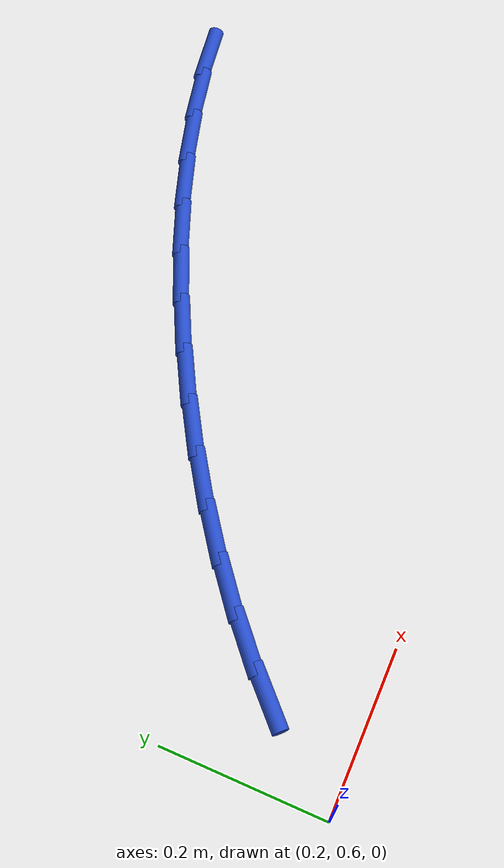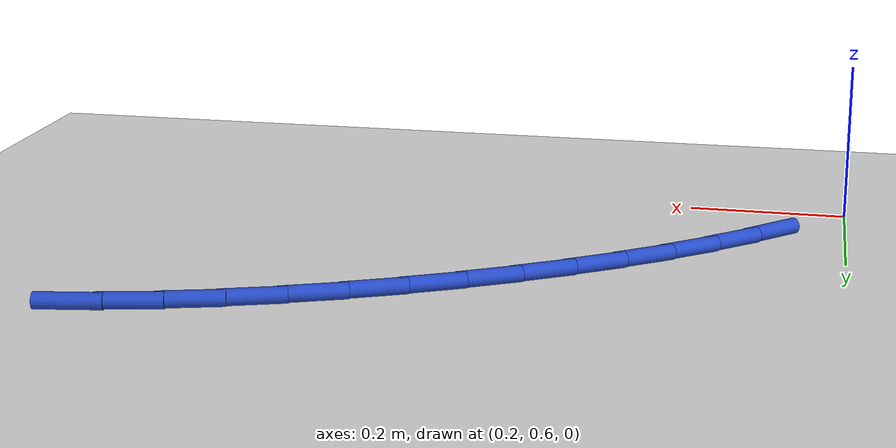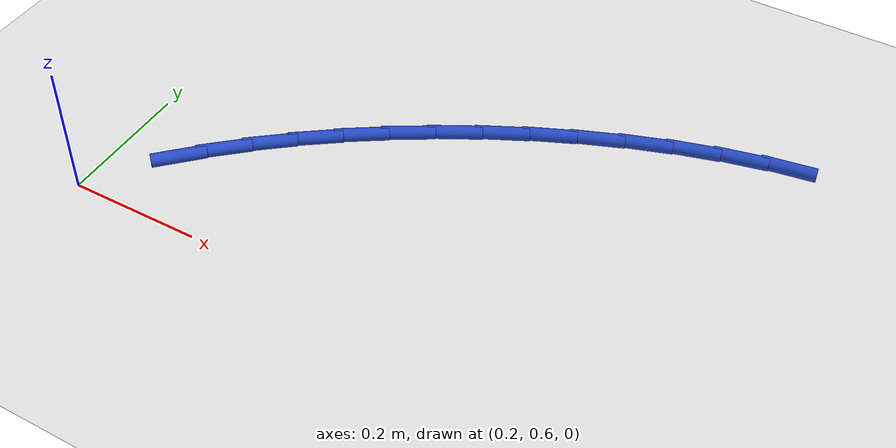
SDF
<sdf version="1.6">
 <world name="default">
  <model name="ground_plane">
   <static>1</static>
   <link name="link">
    <collision name="collision">
     <geometry><plane><normal>0 0 1</normal><size>100 100</size></plane></geometry>
     <surface><friction><ode><mu>100</mu><mu2>50</mu2></ode></friction></surface>
    </collision>
    <visual name="visual">
     <cast_shadows>0</cast_shadows>
     <geometry><plane><normal>0 0 1</normal><size>100 100</size></plane></geometry>
     <material>
      <script><uri>file://media/materials/scripts/gazebo.material</uri><name>Gazebo/WhiteGlow</name></script>
     </material>
    </visual>
   </link>
  </model>
  <model name="line">
   <link name="link_12">
    <pose>0.29241253359389485 0.710895659212705 0.01 0 1.57 0.7790878181678546</pose>
    <collision name="collision">
     <geometry><cylinder><radius>0.01</radius><length>0.08</length></cylinder></geometry>
    </collision>
    <visual name="visual">
     <material>
      <script><name>Gazebo/Blue</name><uri>file://media/materials/scripts/gazebo.material</uri></script>
     </material>
     <geometry><cylinder><radius>0.01</radius><length>0.08</length></cylinder></geometry>
    </visual>
   </link>
   <link name="link_13">
    <pose>0.33872803003354873 0.756630279924443 0.01 0 1.57 0.7259415663652048</pose>
    <collision name="collision">
     <geometry><cylinder><radius>0.01</radius><length>0.08</length></cylinder></geometry>
    </collision>
    <visual name="visual">
     <material>
      <script><name>Gazebo/Blue</name><uri>file://media/materials/scripts/gazebo.material</uri></script>
     </material>
     <geometry><cylinder><radius>0.01</radius><length>0.08</length></cylinder></geometry>
    </visual>
   </link>
   <link name="link_14">
    <pose>0.38771211735115296 0.8001102799243661 0.01 0 1.57 0.6756502726950573</pose>
    <collision name="collision">
     <geometry><cylinder><radius>0.01</radius><length>0.08</length></cylinder></geometry>
    </collision>
    <visual name="visual">
     <material>
      <script><name>Gazebo/Blue</name><uri>file://media/materials/scripts/gazebo.material</uri></script>
     </material>
     <geometry><cylinder><radius>0.01</radius><length>0.08</length></cylinder></geometry>
    </visual>
   </link>
   <link name="link_15">
    <pose>0.4392074993339766 0.8413834366030045 0.01 0 1.57 0.6281997200906082</pose>
    <collision name="collision">
     <geometry><cylinder><radius>0.01</radius><length>0.08</length></cylinder></geometry>
    </collision>
    <visual name="visual">
     <material>
      <script><name>Gazebo/Blue</name><uri>file://media/materials/scripts/gazebo.material</uri></script>
     </material>
     <geometry><cylinder><radius>0.01</radius><length>0.08</length></cylinder></geometry>
    </visual>
   </link>
   <link name="link_16">
    <pose>0.49305687976928875 0.8804975273508878 0.01 0 1.57 0.58352695207093</pose>
    <collision name="collision">
     <geometry><cylinder><radius>0.01</radius><length>0.08</length></cylinder></geometry>
    </collision>
    <visual name="visual">
     <material>
      <script><name>Gazebo/Blue</name><uri>file://media/materials/scripts/gazebo.material</uri></script>
     </material>
     <geometry><cylinder><radius>0.01</radius><length>0.08</length></cylinder></geometry>
    </visual>
   </link>
   <link name="link_17">
    <pose>0.549102962444358 0.9175003295585454 0.01 0 1.57 0.5415327051162887</pose>
    <collision name="collision">
     <geometry><cylinder><radius>0.01</radius><length>0.08</length></cylinder></geometry>
    </collision>
    <visual name="visual">
     <material>
      <script><name>Gazebo/Blue</name><uri>file://media/materials/scripts/gazebo.material</uri></script>
     </material>
     <geometry><cylinder><radius>0.01</radius><length>0.08</length></cylinder></geometry>
    </visual>
   </link>
   <link name="link_18">
    <pose>0.6071884511464538 0.9524396206165077 0.01 0 1.57 0.5017090187192448</pose>
    <collision name="collision">
     <geometry><cylinder><radius>0.01</radius><length>0.08</length></cylinder></geometry>
    </collision>
    <visual name="visual">
     <material>
      <script><name>Gazebo/Blue</name><uri>file://media/materials/scripts/gazebo.material</uri></script>
     </material>
     <geometry><cylinder><radius>0.01</radius><length>0.08</length></cylinder></geometry>
    </visual>
   </link>
   <link name="link_19">
    <pose>0.6671459461467187 0.9853277237183573 0.01 0 1.57 0.4612803159577414</pose>
    <collision name="collision">
     <geometry><cylinder><radius>0.01</radius><length>0.08</length></cylinder></geometry>
    </collision>
    <visual name="visual">
     <material>
      <script><name>Gazebo/Blue</name><uri>file://media/materials/scripts/gazebo.material</uri></script>
     </material>
     <geometry><cylinder><radius>0.01</radius><length>0.08</length></cylinder></geometry>
    </visual>
   </link>
   <link name="link_20">
    <pose>0.7287415025160247 1.015943448634552 0.01 0 1.57 0.4187520571143796</pose>
    <collision name="collision">
     <geometry><cylinder><radius>0.01</radius><length>0.08</length></cylinder></geometry>
    </collision>
    <visual name="visual">
     <material>
      <script><name>Gazebo/Blue</name><uri>file://media/materials/scripts/gazebo.material</uri></script>
     </material>
     <geometry><cylinder><radius>0.01</radius><length>0.08</length></cylinder></geometry>
    </visual>
   </link>
   <link name="link_21">
    <pose>0.7917142568600285 1.04397114568645 0.01 0 1.57 0.3736024954502698</pose>
    <collision name="collision">
     <geometry><cylinder><radius>0.01</radius><length>0.08</length></cylinder></geometry>
    </collision>
    <visual name="visual">
     <material>
      <script><name>Gazebo/Blue</name><uri>file://media/materials/scripts/gazebo.material</uri></script>
     </material>
     <geometry><cylinder><radius>0.01</radius><length>0.08</length></cylinder></geometry>
    </visual>
   </link>
   <link name="link_22">
    <pose>0.8558032700058189 1.069094899281223 0.01 0 1.57 0.3252910114154117</pose>
    <collision name="collision">
     <geometry><cylinder><radius>0.01</radius><length>0.08</length></cylinder></geometry>
    </collision>
    <visual name="visual">
     <material>
      <script><name>Gazebo/Blue</name><uri>file://media/materials/scripts/gazebo.material</uri></script>
     </material>
     <geometry><cylinder><radius>0.01</radius><length>0.08</length></cylinder></geometry>
    </visual>
   </link>
   <link name="link_23">
    <pose>0.9207476027804842 1.0909987938260421 0.01 0 1.57 0.27325318186826697</pose>
    <collision name="collision">
     <geometry><cylinder><radius>0.01</radius><length>0.08</length></cylinder></geometry>
    </collision>
    <visual name="visual">
     <material>
      <script><name>Gazebo/Blue</name><uri>file://media/materials/scripts/gazebo.material</uri></script>
     </material>
     <geometry><cylinder><radius>0.01</radius><length>0.08</length></cylinder></geometry>
    </visual>
   </link>
   <link name="link_24">
    <pose>0.986286316011113 1.1093669137280784 0.01 0 1.57 0.21690584539388766</pose>
    <collision name="collision">
     <geometry><cylinder><radius>0.01</radius><length>0.08</length></cylinder></geometry>
    </collision>
    <visual name="visual">
     <material>
      <script><name>Gazebo/Blue</name><uri>file://media/materials/scripts/gazebo.material</uri></script>
     </material>
     <geometry><cylinder><radius>0.01</radius><length>0.08</length></cylinder></geometry>
    </visual>
   </link>
   <link name="link_25">
    <pose>1.052158470524794 1.123883343394503 0.01 0 1.57 0.15566237437935762</pose>
    <collision name="collision">
     <geometry><cylinder><radius>0.01</radius><length>0.08</length></cylinder></geometry>
    </collision>
    <visual name="visual">
     <material>
      <script><name>Gazebo/Blue</name><uri>file://media/materials/scripts/gazebo.material</uri></script>
     </material>
     <geometry><cylinder><radius>0.01</radius><length>0.08</length></cylinder></geometry>
    </visual>
   </link>
  </model>
 </world>
</sdf>
